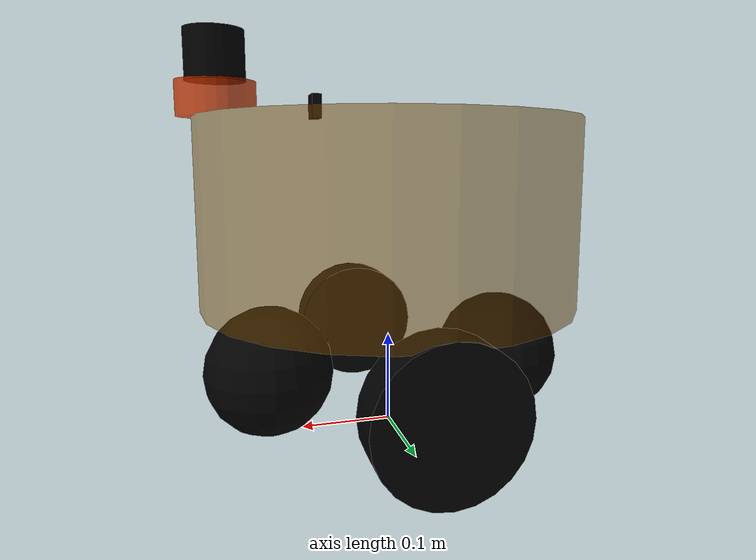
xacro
<!-- 组合小车底盘与摄像头 -->
<!-- 使用gazebo官方diff drive -->
<robot name="diffbot_move_sim" xmlns:xacro="http://wiki.ros.org/xacro">
    <xacro:include filename="$(find mybot_description)/diffbot_description/urdf/diffbot.urdf.xacro" />

    <xacro:include filename="$(find mybot_description)/diffbot_description/urdf/plugin/gazebo_diff_drive.urdf.xacro" />

</robot>

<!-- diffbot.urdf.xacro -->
<!-- 组合小车底盘与摄像头 -->
<robot name="diffbot" xmlns:xacro="http://wiki.ros.org/xacro">
    <xacro:include filename="$(find mybot_description)/common_model/inertial.urdf.xacro" />
    <xacro:include filename="$(find mybot_description)/diffbot_description/urdf/diffbot_base.urdf.xacro" />
    <xacro:include filename="$(find mybot_description)/common_model/camera.urdf.xacro" />
    <xacro:include filename="$(find mybot_description)/common_model/laser.urdf.xacro" />

</robot>

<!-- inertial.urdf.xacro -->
<robot name="inertial" xmlns:xacro="http://wiki.ros.org/xacro">
    <!-- Macro for inertia matrix -->
    <xacro:macro name="sphere_inertial_matrix" params="m r">
        <inertial>
            <mass value="${m}" />
            <inertia ixx="${2*m*r*r/5}" ixy="0" ixz="0"
                iyy="${2*m*r*r/5}" iyz="0"
                izz="${2*m*r*r/5}" />
        </inertial>
    </xacro:macro>

    <xacro:macro name="cylinder_inertial_matrix" params="m r h">
        <inertial>
            <mass value="${m}" />
            <inertia ixx="${m*(3*r*r+h*h)/12}" ixy = "0" ixz = "0"
                iyy="${m*(3*r*r+h*h)/12}" iyz = "0"
                izz="${m*r*r/2}" />
        </inertial>
    </xacro:macro>

    <xacro:macro name="Box_inertial_matrix" params="m l w h">
       <inertial>
               <mass value="${m}" />
               <inertia ixx="${m*(h*h + l*l)/12}" ixy = "0" ixz = "0"
                   iyy="${m*(w*w + l*l)/12}" iyz= "0"
                   izz="${m*(w*w + h*h)/12}" />
       </inertial>
   </xacro:macro>
</robot>

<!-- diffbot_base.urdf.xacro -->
<!--
    使用 xacro 优化 URDF 版的小车底盘实现：

    实现思路:
    1.将一些常量、变量封装为 xacro:property
      比如:PI 值、小车底盘半径、离地间距、车轮半径、宽度 ....
    2.使用 宏 封装驱动轮以及支撑轮实现，调用相关宏生成驱动轮与支撑轮

-->
<!-- 根标签，必须声明 xmlns:xacro -->
<robot name="diffbot_base" xmlns:xacro="http://www.ros.org/wiki/xacro">
    <!-- 封装变量、常量 -->
    <!-- PI 值设置精度需要高一些，否则后续车轮翻转量计算时，可能会出现肉眼不能察觉的车轮倾斜，从而导致模型抖动 -->
    <xacro:property name="PI" value="3.1415926"/>
    <!-- 宏:黑色设置 -->
    <material name="black">
        <color rgba="0.0 0.0 0.0 1.0" />
    </material>
    <!-- 底盘属性 -->
    <xacro:property name="base_footprint_radius" value="0.001" /> <!-- base_footprint 半径  -->
    <xacro:property name="base_link_radius" value="0.205" /> <!-- base_link 半径 -->
    <xacro:property name="base_link_height" value="0.2" /> <!-- base_link 长 -->
    <xacro:property name="earth_space" value="0.14" /> <!-- 离地间距 -->
    <xacro:property name="base_link_m" value="5" /> <!-- 质量  -->

    <!-- 底盘 -->
    <link name="base_footprint">
      <visual>
        <geometry>
          <sphere radius="${base_footprint_radius}" />
        </geometry>
      </visual>
    </link>

    <link name="base_link">
      <visual>
        <geometry>
          <cylinder radius="${base_link_radius}" length="${base_link_height}" />
        </geometry>
        <origin xyz="0 0 0" rpy="0 0 0" />
        <material name="yellow">
          <color rgba="0.5 0.3 0.0 0.5" />
        </material>
      </visual>
      <collision>
        <geometry>
          <cylinder radius="${base_link_radius}" length="${base_link_height}" />
        </geometry>
        <origin xyz="0 0 0" rpy="0 0 0" />
      </collision>
      <xacro:cylinder_inertial_matrix m="${base_link_m}" r="${base_link_radius}" h="${base_link_height}" />

    </link>

    <joint name="base_link2base_footprint" type="fixed">
      <parent link="base_footprint" />
      <child link="base_link" />
      <origin xyz="0 0 ${earth_space + base_link_height / 2 }" />
    </joint>
    <gazebo reference="base_link">
        <material>Gazebo/Yellow</material>
    </gazebo>

    <!-- 驱动轮 -->
    <!-- 驱动轮属性 -->
    <xacro:property name="wheel_radius" value="0.075" /><!-- 半径 -->
    <xacro:property name="wheel_length" value="0.046" /><!-- 宽度 -->
    <xacro:property name="wheel_m" value="0.25" /> <!-- 质量  -->

    <!-- 驱动轮宏实现 -->
    <xacro:macro name="add_wheels" params="name flag">
      <link name="${name}_wheel">
        <visual>
          <geometry>
            <cylinder radius="${wheel_radius}" length="${wheel_length}" />
          </geometry>
          <origin xyz="0.0 0.0 0.0" rpy="${PI / 2} 0.0 0.0" />
          <material name="black" />
        </visual>
        <collision>
          <geometry>
            <cylinder radius="${wheel_radius}" length="${wheel_length}" />
          </geometry>
          <origin xyz="0.0 0.0 0.0" rpy="${PI / 2} 0.0 0.0" />
        </collision>
        <xacro:cylinder_inertial_matrix m="${wheel_m}" r="${wheel_radius}" h="${wheel_length}" />

      </link>

      <joint name="${name}_wheel2base_link" type="continuous">
        <parent link="base_link" />
        <child link="${name}_wheel" />
        <origin xyz="0 ${flag * (base_link_radius - wheel_length / 2)} ${-(earth_space + base_link_height / 2 - wheel_radius) }" />
        <axis xyz="0 1 0" />
      </joint>

        <!-- Transmission is important to link the joints and the controller -->
      <transmission name="${name}_wheel2base_link_trans">
          <type>transmission_interface/SimpleTransmission</type>
          <joint name="${name}_wheel2base_link">
                <hardwareInterface>hardware_interface/VelocityJointInterface</hardwareInterface>
          </joint>
          <actuator name="${name}_wheel2base_link_motor">
                <hardwareInterface>hardware_interface/VelocityJointInterface</hardwareInterface>
                <mechanicalReduction>30</mechanicalReduction>
          </actuator>
      </transmission>

      <gazebo reference="${name}_wheel">
        <material>Gazebo/Red</material>
      </gazebo>

    </xacro:macro>
    <xacro:add_wheels name="left" flag="1" />
    <xacro:add_wheels name="right" flag="-1" />
    <!-- 支撑轮 -->
    <!-- 支撑轮属性 -->
    <xacro:property name="support_wheel_radius" value="0.07" /> <!-- 支撑轮半径 -->
    <xacro:property name="support_wheel_m" value="0.3" /> <!-- 质量  -->

    <!-- 支撑轮宏 -->
    <xacro:macro name="add_support_wheel" params="name flag" >
      <link name="${name}_wheel">
        <visual>
            <geometry>
                <sphere radius="${support_wheel_radius}" />
            </geometry>
            <origin xyz="0 0 0" rpy="0 0 0" />
            <material name="black" />
        </visual>
        <collision>
            <geometry>
                <sphere radius="${support_wheel_radius}" />
            </geometry>
            <origin xyz="0 0 0" rpy="0 0 0" />
        </collision>
        <xacro:sphere_inertial_matrix m="${support_wheel_m}" r="${support_wheel_radius}" />
      </link>

      <joint name="${name}_wheel2base_link" type="continuous">
          <parent link="base_link" />
          <child link="${name}_wheel" />
          <origin xyz="${flag * (base_link_radius - support_wheel_radius)} 0 ${-(base_link_height / 2 + earth_space / 2)}" />
          <axis xyz="1 1 1" />
      </joint>
      <gazebo reference="${name}_wheel">
        <material>Gazebo/Red</material>
      </gazebo>
    </xacro:macro>

    <xacro:add_support_wheel name="front" flag="1" />
    <xacro:add_support_wheel name="back" flag="-1" />

</robot>

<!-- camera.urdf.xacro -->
<!-- 摄像头相关的 xacro 文件 -->
<robot name="my_camera" xmlns:xacro="http://wiki.ros.org/xacro">
    <!-- 摄像头属性 -->
    <xacro:property name="camera_length" value="0.01" /> <!-- 摄像头长度(x) -->
    <xacro:property name="camera_width" value="0.025" /> <!-- 摄像头宽度(y) -->
    <xacro:property name="camera_height" value="0.025" /> <!-- 摄像头高度(z) -->
    <xacro:property name="camera_x" value="0.08" /> <!-- 摄像头安装的x坐标 -->
    <xacro:property name="camera_y" value="0.0" /> <!-- 摄像头安装的y坐标 -->
    <xacro:property name="camera_z" value="${base_link_height / 2 + camera_height / 2}" /> <!-- 摄像头安装的z坐标:底盘高度 / 2 + 摄像头高度 / 2  -->

    <xacro:property name="camera_m" value="0.01" /> <!-- 摄像头质量 -->

    <!-- 摄像头关节以及link -->
    <link name="camera">
        <visual>
            <geometry>
                <box size="${camera_length} ${camera_width} ${camera_height}" />
            </geometry>
            <origin xyz="0.0 0.0 0.0" rpy="0.0 0.0 0.0" />
            <material name="black" />
        </visual>
        <collision>
            <geometry>
                <box size="${camera_length} ${camera_width} ${camera_height}" />
            </geometry>
            <origin xyz="0.0 0.0 0.0" rpy="0.0 0.0 0.0" />
        </collision>
        <xacro:Box_inertial_matrix m="${camera_m}" l="${camera_length}" w="${camera_width}" h="${camera_height}" />
    </link>

    <joint name="camera2base_link" type="fixed">
        <parent link="base_link" />
        <child link="camera" />
        <origin xyz="${camera_x} ${camera_y} ${camera_z}" />
    </joint>
    <gazebo reference="camera">
        <material>Gazebo/Blue</material>
    </gazebo>
</robot>

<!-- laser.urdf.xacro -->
<!--
    小车底盘添加雷达
-->
<robot name="laser" xmlns:xacro="http://wiki.ros.org/xacro">

    <!-- 雷达支架 -->
    <xacro:property name="support_length" value="0.035" /> <!-- 支架长度 -->
    <xacro:property name="support_radius" value="0.04" /> <!-- 支架半径 -->
    <xacro:property name="support_x" value="0.18" /> <!-- 支架安装的x坐标 -->
    <xacro:property name="support_y" value="0.0" /> <!-- 支架安装的y坐标 -->
    <xacro:property name="support_z" value="${base_link_height / 2 + support_length / 2}" /> <!-- 支架安装的z坐标:底盘高度 / 2 + 支架高度 / 2  -->

    <xacro:property name="support_m" value="0.02" /> <!-- 支架质量 -->

    <link name="support">
        <visual>
            <geometry>
                <cylinder radius="${support_radius}" length="${support_length}" />
            </geometry>
            <origin xyz="0.0 0.0 0.0" rpy="0.0 0.0 0.0" />
            <material name="red">
                <color rgba="0.8 0.2 0.0 0.8" />
            </material>
        </visual>

        <collision>
            <geometry>
                <cylinder radius="${support_radius}" length="${support_length}" />
            </geometry>
            <origin xyz="0.0 0.0 0.0" rpy="0.0 0.0 0.0" />
        </collision>

        <xacro:cylinder_inertial_matrix m="${support_m}" r="${support_radius}" h="${support_length}" />

    </link>

    <joint name="support2base_link" type="fixed">
        <parent link="base_link" />
        <child link="support" />
        <origin xyz="${support_x} ${support_y} ${support_z}" />
    </joint>

    <gazebo reference="support">
        <material>Gazebo/White</material>
    </gazebo>

    <!-- 雷达属性 -->
    <xacro:property name="laser_length" value="0.05" /> <!-- 雷达长度 -->
    <xacro:property name="laser_radius" value="0.03" /> <!-- 雷达半径 -->
    <xacro:property name="laser_x" value="0.0" /> <!-- 雷达安装的x坐标 -->
    <xacro:property name="laser_y" value="0.0" /> <!-- 雷达安装的y坐标 -->
    <xacro:property name="laser_z" value="${support_length / 2 + laser_length / 2}" /> <!-- 雷达安装的z坐标:支架高度 / 2 + 雷达高度 / 2  -->

    <xacro:property name="laser_m" value="0.1" /> <!-- 雷达质量 -->

    <!-- 雷达关节以及link -->
    <link name="laser_link">
        <visual>
            <geometry>
                <cylinder radius="${laser_radius}" length="${laser_length}" />
            </geometry>
            <origin xyz="0.0 0.0 0.0" rpy="0.0 0.0 0.0" />
            <material name="black" />
        </visual>
        <collision>
            <geometry>
                <cylinder radius="${laser_radius}" length="${laser_length}" />
            </geometry>
            <origin xyz="0.0 0.0 0.0" rpy="0.0 0.0 0.0" />
        </collision>
        <xacro:cylinder_inertial_matrix m="${laser_m}" r="${laser_radius}" h="${laser_length}" />
    </link>

    <joint name="laser2support" type="fixed">
        <parent link="support" />
        <child link="laser_link" />
        <origin xyz="${laser_x} ${laser_y} ${laser_z}" />
    </joint>
    <gazebo reference="laser_link">
        <material>Gazebo/Black</material>
    </gazebo>
</robot>
